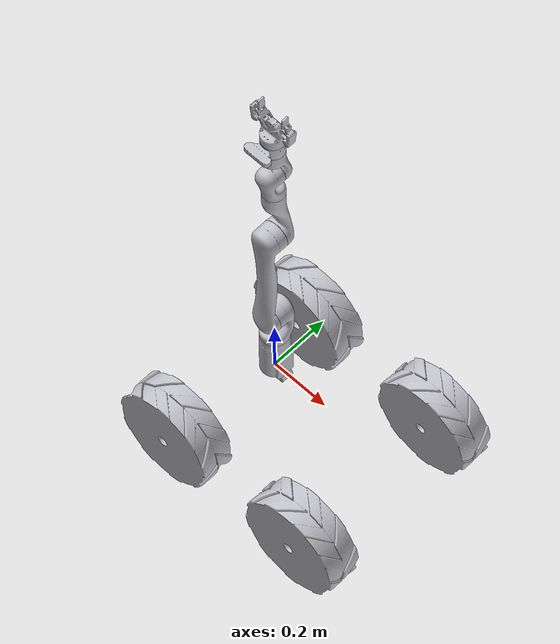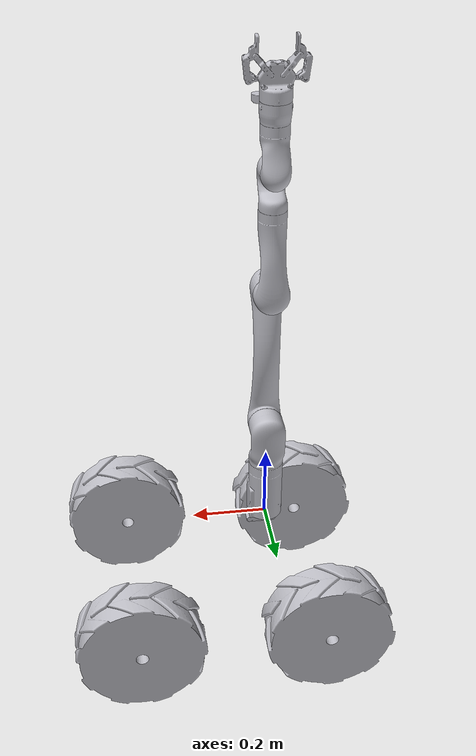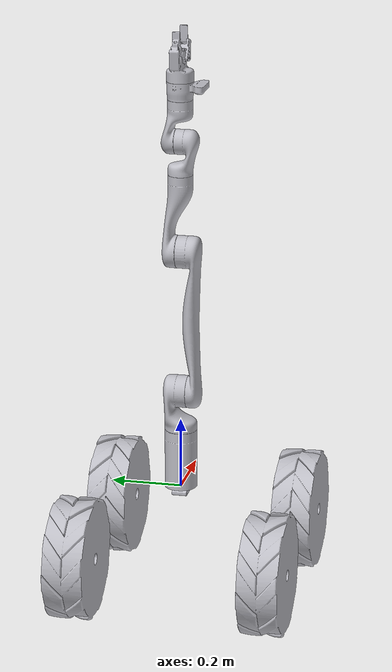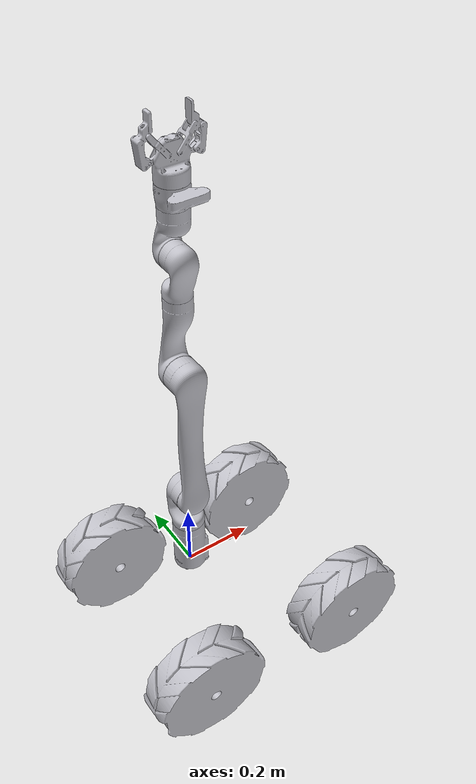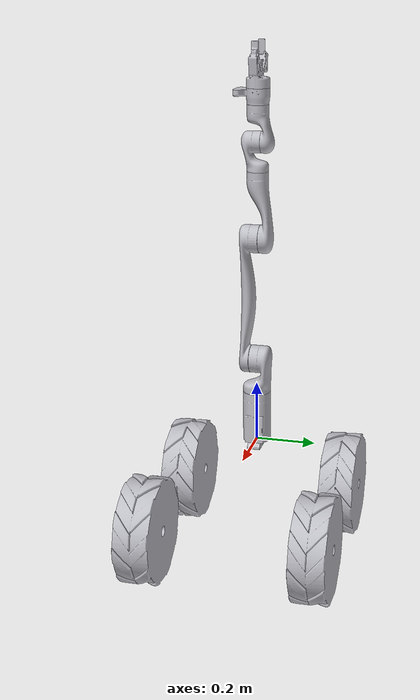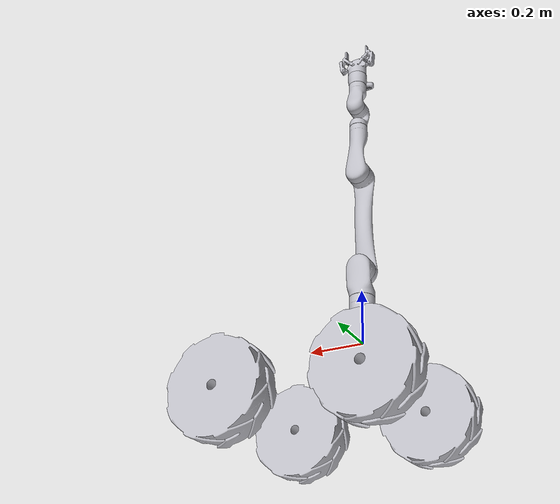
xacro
<?xml version="1.0" ?>
<robot name="fruit_ros" xmlns:xacro="http://www.ros.org/wiki/xacro">

<xacro:include filename="$(find fruit_ros_description)/urdf/materials.xacro" />
<xacro:include filename="$(find fruit_ros_description)/urdf/fruit_ros.trans" />
<xacro:include filename="$(find fruit_ros_description)/urdf/fruit_ros.gazebo" />
<link name="base_link">
  <inertial>
    <origin rpy="0 0 0" xyz="0.12196981323501736 3.9467705556831103e-08 0.25124197508381657"/>
    <mass value="55.03030560017143"/>
    <inertia ixx="1.590254" ixy="0.0" ixz="0.00021" iyy="3.455304" iyz="-0.0" izz="4.317959"/>
  </inertial>
  <visual>
    <origin rpy="0 0 0" xyz="0 0 0"/>
    <geometry>
      <mesh filename="package://fruit_ros_description/meshes/base_link.stl" scale="0.001 0.001 0.001"/>
    </geometry>
    <material name="silver"/>
  </visual>
  <collision>
    <origin rpy="0 0 0" xyz="0 0 0"/>
    <geometry>
      <mesh filename="package://fruit_ros_description/meshes/base_link.stl" scale="0.001 0.001 0.001"/>
    </geometry>
  </collision>
</link>

<link name="link_1_1">
  <inertial>
    <origin rpy="0 0 0" xyz="-7.568800909248108e-09 0.011019696658199483 0.07626434040191188"/>
    <mass value="1.6702351491714478"/>
    <inertia ixx="0.005515" ixy="0.0" ixz="0.0" iyy="0.005748" iyz="-0.000654" izz="0.001643"/>
  </inertial>
  <visual>
    <origin rpy="0 0 0" xyz="0.0 -0.0 -0.527425"/>
    <geometry>
      <mesh filename="package://fruit_ros_description/meshes/link_1_1.stl" scale="0.001 0.001 0.001"/>
    </geometry>
    <material name="silver"/>
  </visual>
  <collision>
    <origin rpy="0 0 0" xyz="0.0 -0.0 -0.527425"/>
    <geometry>
      <mesh filename="package://fruit_ros_description/meshes/link_1_1.stl" scale="0.001 0.001 0.001"/>
    </geometry>
  </collision>
</link>

<link name="link_2_1">
  <inertial>
    <origin rpy="0 0 0" xyz="0.10413768506765335 -0.02271930619479503 0.1803718456195249"/>
    <mass value="4.828876187675906"/>
    <inertia ixx="0.137637" ixy="-0.000193" ixz="-0.077583" iyy="0.183869" iyz="-0.000334" izz="0.048052"/>
  </inertial>
  <visual>
    <origin rpy="0 0 0" xyz="0.0 0.005375 -0.6558"/>
    <geometry>
      <mesh filename="package://fruit_ros_description/meshes/link_2_1.stl" scale="0.001 0.001 0.001"/>
    </geometry>
    <material name="silver"/>
  </visual>
  <collision>
    <origin rpy="0 0 0" xyz="0.0 0.005375 -0.6558"/>
    <geometry>
      <mesh filename="package://fruit_ros_description/meshes/link_2_1.stl" scale="0.001 0.001 0.001"/>
    </geometry>
  </collision>
</link>

<link name="link_3_1">
  <inertial>
    <origin rpy="0 0 0" xyz="-0.07229608269790588 0.017525898693378533 0.006325606794564509"/>
    <mass value="1.2643948660755089"/>
    <inertia ixx="0.00097" ixy="-0.000876" ixz="0.000845" iyy="0.010746" iyz="7.7e-05" izz="0.010548"/>
  </inertial>
  <visual>
    <origin rpy="0 0 0" xyz="-0.205 0.005375 -1.01087"/>
    <geometry>
      <mesh filename="package://fruit_ros_description/meshes/link_3_1.stl" scale="0.001 0.001 0.001"/>
    </geometry>
    <material name="silver"/>
  </visual>
  <collision>
    <origin rpy="0 0 0" xyz="-0.205 0.005375 -1.01087"/>
    <geometry>
      <mesh filename="package://fruit_ros_description/meshes/link_3_1.stl" scale="0.001 0.001 0.001"/>
    </geometry>
  </collision>
</link>

<link name="link_4_1">
  <inertial>
    <origin rpy="0 0 0" xyz="-0.06384694275172988 -0.010452252673189454 0.005585752569482461"/>
    <mass value="0.7889979638503541"/>
    <inertia ixx="0.00049" ixy="-0.000322" ixz="0.000117" iyy="0.001814" iyz="2.8e-05" izz="0.001823"/>
  </inertial>
  <visual>
    <origin rpy="0 0 0" xyz="0.002632 -0.001 -1.029036"/>
    <geometry>
      <mesh filename="package://fruit_ros_description/meshes/link_4_1.stl" scale="0.001 0.001 0.001"/>
    </geometry>
    <material name="silver"/>
  </visual>
  <collision>
    <origin rpy="0 0 0" xyz="0.002632 -0.001 -1.029036"/>
    <geometry>
      <mesh filename="package://fruit_ros_description/meshes/link_4_1.stl" scale="0.001 0.001 0.001"/>
    </geometry>
  </collision>
</link>

<link name="link_5_1">
  <inertial>
    <origin rpy="0 0 0" xyz="-0.04421416444603249 0.010243966118229076 0.0038680322760000774"/>
    <mass value="0.7574122178487069"/>
    <inertia ixx="0.000475" ixy="-0.000316" ixz="0.000116" iyy="0.001786" iyz="2.8e-05" izz="0.001794"/>
  </inertial>
  <visual>
    <origin rpy="0 0 0" xyz="0.108154 -0.001175 -1.038268"/>
    <geometry>
      <mesh filename="package://fruit_ros_description/meshes/link_5_1.stl" scale="0.001 0.001 0.001"/>
    </geometry>
    <material name="silver"/>
  </visual>
  <collision>
    <origin rpy="0 0 0" xyz="0.108154 -0.001175 -1.038268"/>
    <geometry>
      <mesh filename="package://fruit_ros_description/meshes/link_5_1.stl" scale="0.001 0.001 0.001"/>
    </geometry>
  </collision>
</link>

<link name="link_6_1">
  <inertial>
    <origin rpy="0 0 0" xyz="-0.030316133527141853 0.0002809988951784001 0.0188480351164384"/>
    <mass value="0.2557405908013451"/>
    <inertia ixx="0.000396" ixy="1e-06" ixz="6e-05" iyy="0.000376" iyz="1e-06" izz="0.000236"/>
  </inertial>
  <visual>
    <origin rpy="0 0 0" xyz="0.213676 -0.00135 -1.0475"/>
    <geometry>
      <mesh filename="package://fruit_ros_description/meshes/link_6_1.stl" scale="0.001 0.001 0.001"/>
    </geometry>
    <material name="silver"/>
  </visual>
  <collision>
    <origin rpy="0 0 0" xyz="0.213676 -0.00135 -1.0475"/>
    <geometry>
      <mesh filename="package://fruit_ros_description/meshes/link_6_1.stl" scale="0.001 0.001 0.001"/>
    </geometry>
  </collision>
</link>

<link name="gripper_1">
  <inertial>
    <origin rpy="0 0 0" xyz="-0.16940436521430124 0.2761038706640693 0.014972368352804688"/>
    <mass value="0.8326344595331522"/>
    <inertia ixx="0.001045" ixy="0.0" ixz="6.8e-05" iyy="0.001141" iyz="-4e-06" izz="0.001843"/>
  </inertial>
  <visual>
    <origin rpy="0 0 0" xyz="0.151733 0.274725 -1.041886"/>
    <geometry>
      <mesh filename="package://fruit_ros_description/meshes/gripper_1.stl" scale="0.001 0.001 0.001"/>
    </geometry>
    <material name="silver"/>
  </visual>
  <collision>
    <origin rpy="0 0 0" xyz="0.151733 0.274725 -1.041886"/>
    <geometry>
      <mesh filename="package://fruit_ros_description/meshes/gripper_1.stl" scale="0.001 0.001 0.001"/>
    </geometry>
  </collision>
</link>

<link name="robo_base_1">
  <inertial>
    <origin rpy="0 0 0" xyz="0.000726515850929188 -0.00010648785331383357 0.07814541447663209"/>
    <mass value="2.8686485811941256"/>
    <inertia ixx="0.007442" ixy="-0.0" ixz="7.6e-05" iyy="0.007508" iyz="5e-06" izz="0.003116"/>
  </inertial>
  <visual>
    <origin rpy="0 0 0" xyz="-6.2e-05 -0.000157 -0.371"/>
    <geometry>
      <mesh filename="package://fruit_ros_description/meshes/robo_base_1.stl" scale="0.001 0.001 0.001"/>
    </geometry>
    <material name="silver"/>
  </visual>
  <collision>
    <origin rpy="0 0 0" xyz="-6.2e-05 -0.000157 -0.371"/>
    <geometry>
      <mesh filename="package://fruit_ros_description/meshes/robo_base_1.stl" scale="0.001 0.001 0.001"/>
    </geometry>
  </collision>
</link>

<link name="front_left_wheel_1">
  <inertial>
    <origin rpy="0 0 0" xyz="-1.719738423888728e-08 0.05750011981745545 -4.353202356921493e-08"/>
    <mass value="9.473394298886726"/>
    <inertia ixx="0.078845" ixy="0.0" ixz="0.0" iyy="0.136814" iyz="0.0" izz="0.078845"/>
  </inertial>
  <visual>
    <origin rpy="0 0 0" xyz="0.133 0.335 -0.1775"/>
    <geometry>
      <mesh filename="package://fruit_ros_description/meshes/front_left_wheel_1.stl" scale="0.001 0.001 0.001"/>
    </geometry>
    <material name="silver"/>
  </visual>
  <collision>
    <origin rpy="0 0 0" xyz="0.133 0.335 -0.1775"/>
    <geometry>
      <mesh filename="package://fruit_ros_description/meshes/front_left_wheel_1.stl" scale="0.001 0.001 0.001"/>
    </geometry>
  </collision>
</link>

<link name="rear_left_wheel_1">
  <inertial>
    <origin rpy="0 0 0" xyz="1.719738595973297e-08 0.057499880182544705 -4.353202362472608e-08"/>
    <mass value="9.473394298886726"/>
    <inertia ixx="0.078845" ixy="0.0" ixz="-0.0" iyy="0.136814" iyz="-0.0" izz="0.078845"/>
  </inertial>
  <visual>
    <origin rpy="0 0 0" xyz="-0.377 0.335 -0.1775"/>
    <geometry>
      <mesh filename="package://fruit_ros_description/meshes/rear_left_wheel_1.stl" scale="0.001 0.001 0.001"/>
    </geometry>
    <material name="silver"/>
  </visual>
  <collision>
    <origin rpy="0 0 0" xyz="-0.377 0.335 -0.1775"/>
    <geometry>
      <mesh filename="package://fruit_ros_description/meshes/rear_left_wheel_1.stl" scale="0.001 0.001 0.001"/>
    </geometry>
  </collision>
</link>

<link name="front_right_wheel_1">
  <inertial>
    <origin rpy="0 0 0" xyz="-1.7197384155620554e-08 -0.05749988018254476 -4.3532023596970504e-08"/>
    <mass value="9.473394298886726"/>
    <inertia ixx="0.078845" ixy="0.0" ixz="0.0" iyy="0.136814" iyz="0.0" izz="0.078845"/>
  </inertial>
  <visual>
    <origin rpy="0 0 0" xyz="0.133 -0.335 -0.1775"/>
    <geometry>
      <mesh filename="package://fruit_ros_description/meshes/front_right_wheel_1.stl" scale="0.001 0.001 0.001"/>
    </geometry>
    <material name="silver"/>
  </visual>
  <collision>
    <origin rpy="0 0 0" xyz="0.133 -0.335 -0.1775"/>
    <geometry>
      <mesh filename="package://fruit_ros_description/meshes/front_right_wheel_1.stl" scale="0.001 0.001 0.001"/>
    </geometry>
  </collision>
</link>

<link name="rear_right_wheel_1">
  <inertial>
    <origin rpy="0 0 0" xyz="1.719738240701929e-08 -0.05750011981745534 -4.353202362472608e-08"/>
    <mass value="9.473394298886726"/>
    <inertia ixx="0.078845" ixy="0.0" ixz="-0.0" iyy="0.136814" iyz="-0.0" izz="0.078845"/>
  </inertial>
  <visual>
    <origin rpy="0 0 0" xyz="-0.377 -0.335 -0.1775"/>
    <geometry>
      <mesh filename="package://fruit_ros_description/meshes/rear_right_wheel_1.stl" scale="0.001 0.001 0.001"/>
    </geometry>
    <material name="silver"/>
  </visual>
  <collision>
    <origin rpy="0 0 0" xyz="-0.377 -0.335 -0.1775"/>
    <geometry>
      <mesh filename="package://fruit_ros_description/meshes/rear_right_wheel_1.stl" scale="0.001 0.001 0.001"/>
    </geometry>
  </collision>
</link>

<joint name="joint1" type="continuous">
  <origin rpy="0 0 0" xyz="-6.2e-05 -0.000157 0.156425"/>
  <parent link="robo_base_1"/>
  <child link="link_1_1"/>
  <axis xyz="-0.0 -0.0 1.0"/>
</joint>

<joint name="joint2" type="continuous">
  <origin rpy="0 0 0" xyz="0.0 -0.005375 0.128375"/>
  <parent link="link_1_1"/>
  <child link="link_2_1"/>
  <axis xyz="-0.0 -1.0 0.0"/>
</joint>

<joint name="joint3" type="continuous">
  <origin rpy="0 0 0" xyz="0.205 0.0 0.35507"/>
  <parent link="link_2_1"/>
  <child link="link_3_1"/>
  <axis xyz="0.0 1.0 -0.0"/>
</joint>

<joint name="joint4" type="continuous">
  <origin rpy="0 0 0" xyz="-0.207632 0.006375 0.018166"/>
  <parent link="link_3_1"/>
  <child link="link_4_1"/>
  <axis xyz="-0.996195 0.0 0.087156"/>
</joint>

<joint name="joint5" type="continuous">
  <origin rpy="0 0 0" xyz="-0.105522 0.000175 0.009232"/>
  <parent link="link_4_1"/>
  <child link="link_5_1"/>
  <axis xyz="0.0 1.0 -0.0"/>
</joint>

<joint name="join6" type="continuous">
  <origin rpy="0 0 0" xyz="-0.105522 0.000175 0.009232"/>
  <parent link="link_5_1"/>
  <child link="link_6_1"/>
  <axis xyz="-0.996195 0.0 0.087156"/>
</joint>

<joint name="rigid_gripper" type="fixed">
  <origin rpy="0 0 0" xyz="0.061943 -0.276075 -0.005614"/>
  <parent link="link_6_1"/>
  <child link="gripper_1"/>
</joint>

<joint name="robot_to_base" type="fixed">
  <origin rpy="0 0 0" xyz="6.2e-05 0.000157 0.371"/>
  <parent link="base_link"/>
  <child link="robo_base_1"/>
</joint>

<joint name="front_left_wheel_joint" type="continuous">
  <origin rpy="0 0 0" xyz="-0.133 -0.335 0.1775"/>
  <parent link="base_link"/>
  <child link="front_left_wheel_1"/>
  <axis xyz="0.0 -1.0 0.0"/>
</joint>

<joint name="rear_left_wheel_joint" type="continuous">
  <origin rpy="0 0 0" xyz="0.377 -0.335 0.1775"/>
  <parent link="base_link"/>
  <child link="rear_left_wheel_1"/>
  <axis xyz="0.0 -1.0 0.0"/>
</joint>

<joint name="front_right_wheel_joint" type="continuous">
  <origin rpy="0 0 0" xyz="-0.133 0.335 0.1775"/>
  <parent link="base_link"/>
  <child link="front_right_wheel_1"/>
  <axis xyz="0.0 1.0 0.0"/>
</joint>

<joint name="rear_right_wheel_joint" type="continuous">
  <origin rpy="0 0 0" xyz="0.377 0.335 0.1775"/>
  <parent link="base_link"/>
  <child link="rear_right_wheel_1"/>
  <axis xyz="0.0 1.0 0.0"/>
</joint>

</robot>
